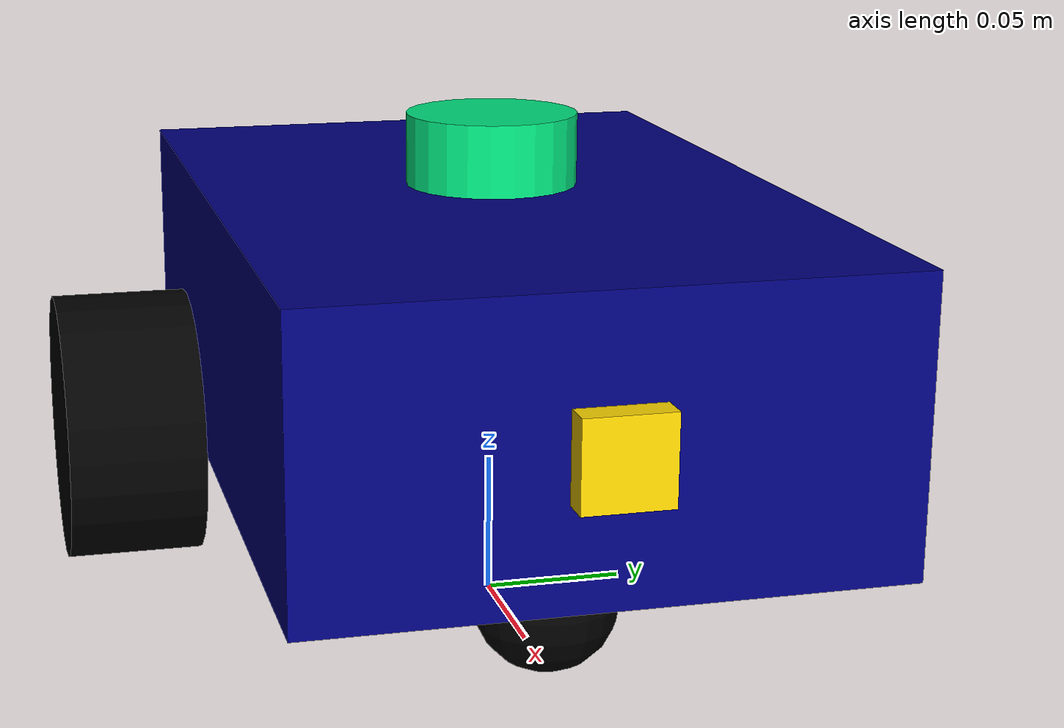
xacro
<?xml version="1.0"?>
<robot name="drive_robot" xmlns:xacro="http://wiki.ros.org/xacro" >

    <xacro:include filename="drive_robot_gazebo.xacro" />

    <link name="base_footprint"/>

    <link name="base_link">
        <visual>
            <geometry>
                <box size="0.3 0.2 0.1" />
            </geometry>
            <origin xyz="0 0 0" rpy="0 0 0" />
            <material name="blue">
                <color rgba="0 0 0.5 1" />
            </material>
        </visual>
        <collision name="collision">
            <geometry>
                <box size="0.3 0.2 0.1" />
            </geometry>
            <origin xyz="0 0 0" rpy="0 0 0" />
        </collision>
        <inertial>
            <origin xyz="0 0 0" rpy="0 0 0" />
            <mass value="2" />
            <inertia
                ixx="8.33e-03" ixy="0" ixz="0"
                iyy="1.667e-02" iyz="0"
                izz="2.1667e-02" />
        </inertial>
    </link>

    <link name="left_wheel">
        <visual>
            <geometry>
                <cylinder radius="0.05" length="0.05" />
            </geometry>
            <origin xyz="0 0 0" rpy="0 0 0" />
            <material name="black">
                <color rgba="0.0 0.0 0.0 1" />
            </material>
        </visual>
        <collision name="collision">
            <geometry>
                <cylinder radius="0.05" length="0.05" />
            </geometry>
            <origin xyz="0 0 0" rpy="0 0 0" />
        </collision>
        <inertial>
            <origin xyz="0 0 0" rpy="0 0 0" />
            <mass value="0.3" />
            <inertia
                ixx="2.5e-04" ixy="0" ixz="0"
                iyy="2.5e-04" iyz="0"
                izz="6.25e-05" />
        </inertial>
    </link>

    <link name="right_wheel">
        <inertial>
            <origin xyz="0 0 0" rpy="0 0 0" />
            <mass value="0.3" />
            <inertia
                ixx="2.5e-04" ixy="0" ixz="0"
                iyy="2.5e-04" iyz="0"
                izz="6.25e-05" />
        </inertial>
        <visual>
            <geometry>
                <cylinder radius="0.05" length="0.05" />
            </geometry>
            <origin xyz="0 0 0" rpy="0 0 0" />
            <material name="black">
                <color rgba="0.0 0.0 0.0 1" />
            </material>
        </visual>
        <collision name="collision">
            <geometry>
                <cylinder radius="0.05" length="0.05" />
            </geometry>
            <origin xyz="0 0 0" rpy="0 0 0" />
        </collision>
    </link>

    <link name="caster_wheel">
        <visual>
            <geometry>
                <sphere radius="0.025" />
            </geometry>
            <origin xyz="0 0 0" rpy="0 0 0" />
            <material name="black">
                <color rgba="0.0 0.0 0.0 1" />
            </material>
        </visual>
        <collision>
            <geometry>
                <sphere radius="0.025" />
            </geometry>
            <origin xyz="0 0 0" rpy="0 0 0" />
        </collision>
        <inertial>
            <origin xyz="0 0 0" rpy="0 0 0" />
            <mass value="0.2" />
            <inertia
                ixx="8.333e-05" ixy="0" ixz="0"
                iyy="8.333e-05" iyz="0"
                izz="8.333e-05" />
        </inertial>
    </link>

    <link name="imu_link">
        <visual>
            <geometry>
                <box size="0.05 0.05 0.05" />
            </geometry>
            <origin xyz="0 0 0" rpy="0 0 0" />
            <material name="grey">
                <color rgba="0.5 0.5 0.5 1" />
            </material>
        </visual>
        <collision>
            <geometry>
                <box size="0.05 0.05 0.05" />
            </geometry>
            <origin xyz="0 0 0" rpy="0 0 0" />
        </collision>
        <inertial>
            <origin xyz="0 0 0" rpy="0 0 0" />
            <mass value="0.1" />
            <inertia
                ixx="4.1667e-05" ixy="0" ixz="0"
                iyy="4.1667e-05" iyz="0"
                izz="4.1667e-05" />
        </inertial>
    </link>

    <link name="lidar_link">
        <visual>
            <geometry>
                <cylinder radius="0.03" length="0.025" />
            </geometry>
            <origin xyz="0 0 0.0275" rpy="0 0 0" />
            <material name="emerald_green">
                <color rgba="0 0.9 0.5 1" />
            </material>
        </visual>
        <collision>
            <geometry>
                <cylinder radius="0.03" length="0.025" />
            </geometry>
            <origin xyz="0 0 0.0275" rpy="0 0 0" />
        </collision>
        <inertial>
            <origin xyz="0 0 0.0275" rpy="0 0 0" />
            <mass value="0.2" />
            <inertia ixx="5.541667e-05" ixy="0" ixz="0"
                iyy="5.541667e-05" iyz="0"
                izz="1.5e-05" />
        </inertial>
    </link>

    <link name="camera_link">
        <visual>
            <geometry>
                <box size="0.01 0.03 0.03" />
            </geometry>
            <origin xyz="0 0 0" rpy="0 0 0" />
            <material name="gold">
                <color rgba="1 0.843 0 1" />
            </material>
        </visual>
        <collision>
            <geometry>
                <box size="0.01 0.03 0.03" />
            </geometry>
            <origin xyz="0 0 0" rpy="0 0 0" />
        </collision>
        <inertial>
            <origin xyz="0 0 0" rpy="0 0 0" />
            <mass value="0.001" />
            <inertia ixx="1.5e-07" ixy="0" ixz="0"
                     iyy="8.33e-08" iyz="0"
                     izz="8.33e-08" />
        </inertial>
    </link>

    <link name="camera_link_optical" />

    <joint name="camera_optical_joint" type="fixed">
        <origin xyz="0 0 0" rpy="${-pi/2} 0 ${-pi/2}"/>
        <parent link="camera_link"/>
        <child link="camera_link_optical"/>
    </joint>

    <joint name="base_footprint_base_link_joint" type="fixed">
        <parent link="base_footprint"/>
        <child link="base_link"/>
        <origin xyz="0 0 0.1" rpy="0 0 0" />
    </joint>

    <joint name="base_link_left_wheel_joint" type="continuous">
        <parent link="base_link" />
        <child link="left_wheel" />
        <origin xyz="-0.075 0.125 -0.05" rpy="-1.5707 0 0" />
        <axis xyz="0 0 1" />
        <limit effort="500.0" velocity="20.0" />
        <dynamics damping="1.0" friction="0.1" />
    </joint>

    <joint name="base_link_right_wheel_joint" type="continuous">
        <parent link="base_link" />
        <child link="right_wheel" />
        <origin xyz="-0.075 -0.125 -0.05" rpy="-1.5707 0 0" />
        <axis xyz="0 0 1" />
        <limit effort="500.0" velocity="20.0" />
        <dynamics damping="1.0" friction="0.1" />
    </joint>

    <joint name="base_link_caster_wheel_joint" type="continuous">
        <parent link="base_link" />
        <child link="caster_wheel" />
        <origin xyz="0.075 0 -0.075" rpy="0 0 0" />
        <axis xyz="0 1 0" />
        <limit effort="500.0" velocity="20.0" />
        <dynamics damping="1.0" friction="0.0001" />
    </joint>

    <joint name="base_link_imu_joint" type="fixed">
        <parent link="base_link" />
        <child link="imu_link" />
        <origin xyz="0 0 0" rpy="0 0 0" />
    </joint>

    <joint name="base_link_lidar_joint" type="fixed">
        <parent link="base_link" />
        <child link="lidar_link" />
        <origin xyz="0 0 ${0.025 + (0.025/2)}" rpy="0 0 0" />
    </joint>

    <joint name="base_link_camera_joint" type="fixed">
        <parent link="base_link" />
        <child link="camera_link" />
        <origin xyz="${0.15+0.005} 0 0" rpy="0 0 0" />
    </joint>

</robot>
